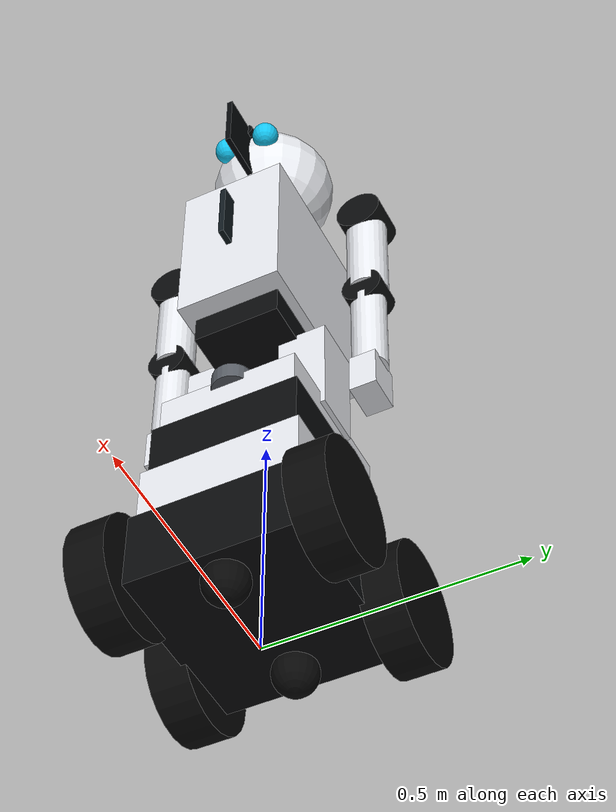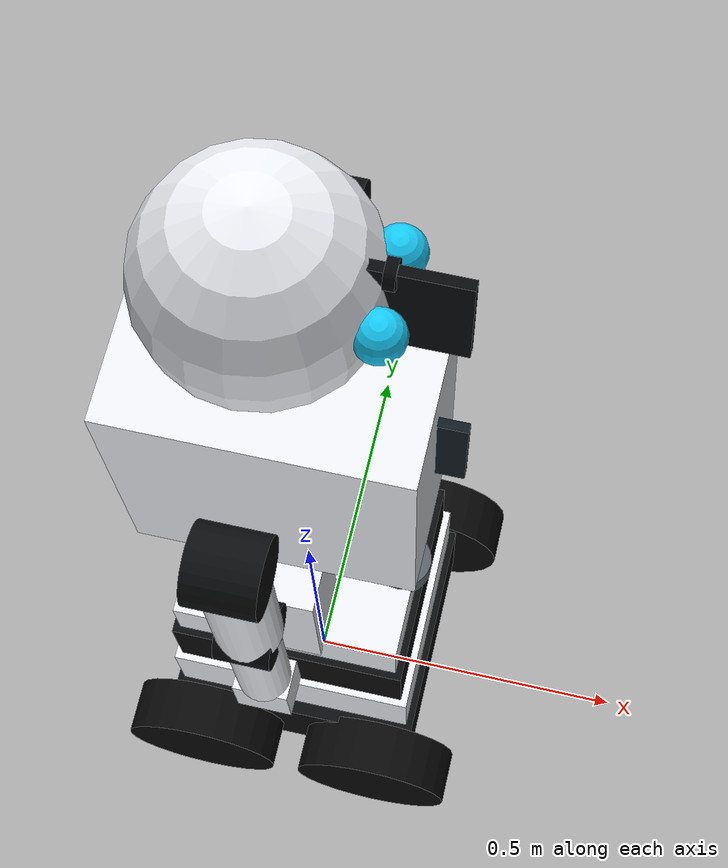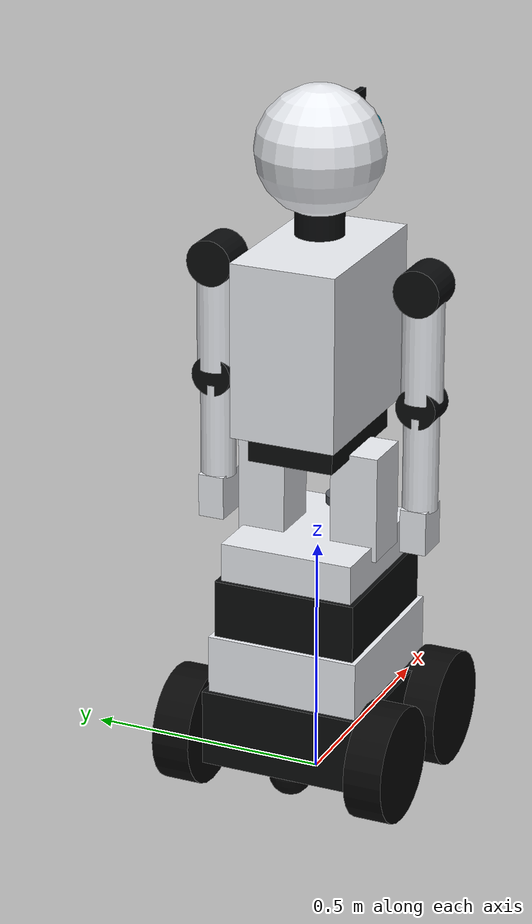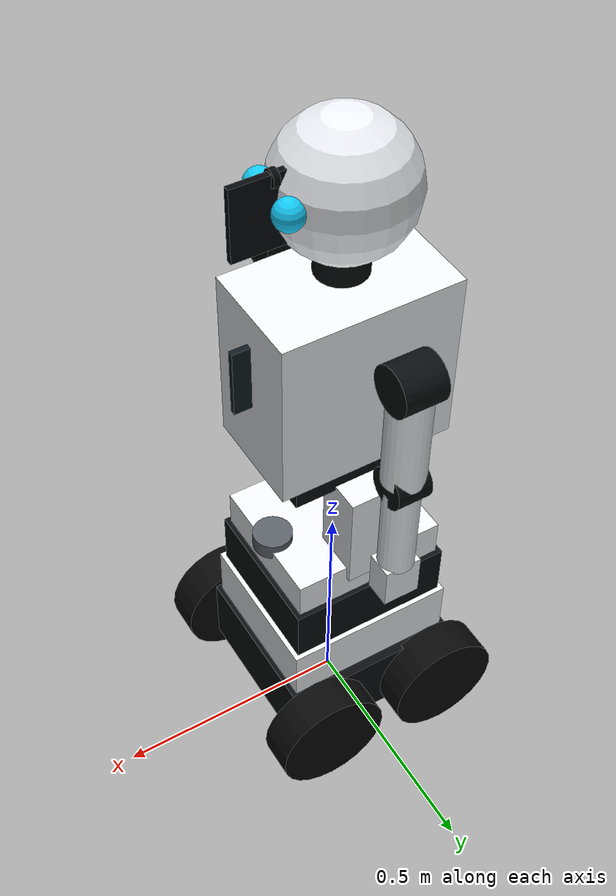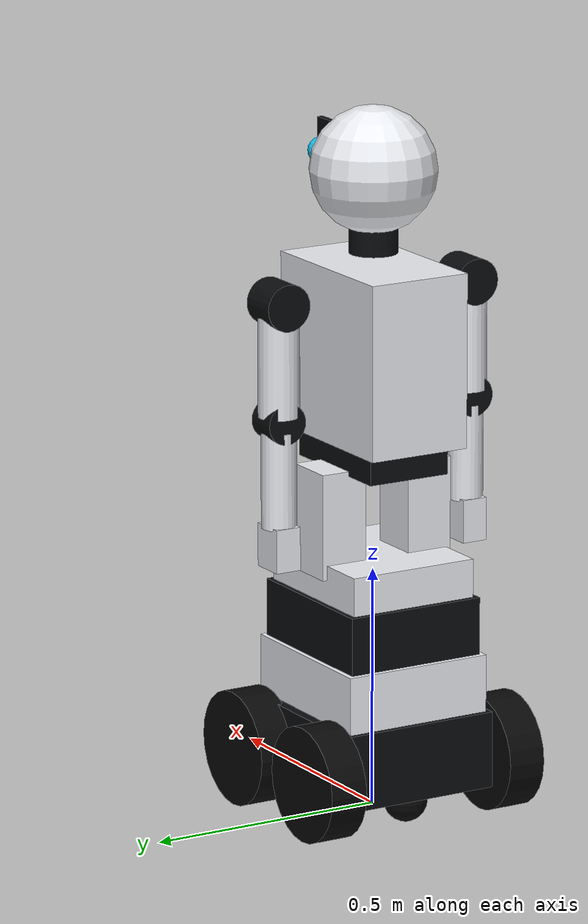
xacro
<?xml version="1.0"?>
<robot xmlns:xacro="http://www.ros.org/wiki/xacro" name="gracemo">

  <!-- GRACEEMO-01 product design: white shells, black joints, cyan LEDs,
       chest status display, ~1.37 m, differential two-wheel base.
       Joint names used by the twin/brain are preserved. -->

  <xacro:property name="chassis_length" value="0.38"/>
  <xacro:property name="chassis_width"  value="0.36"/>
  <xacro:property name="chassis_height" value="0.38"/>
  <xacro:property name="chassis_mass"   value="12.0"/>

  <xacro:property name="wheel_radius"     value="0.12"/>
  <xacro:property name="wheel_width"      value="0.08"/>
  <xacro:property name="wheel_mass"       value="1.2"/>
  <xacro:property name="wheel_separation" value="0.42"/>

  <xacro:property name="caster_radius" value="0.045"/>
  <xacro:property name="caster_mass"   value="0.25"/>

  <xacro:macro name="box_inertia" params="m w h d">
    <inertial>
      <mass value="${m}"/>
      <inertia ixx="${(m/12.0)*(h*h+d*d)}" ixy="0" ixz="0"
               iyy="${(m/12.0)*(w*w+d*d)}" iyz="0"
               izz="${(m/12.0)*(w*w+h*h)}"/>
    </inertial>
  </xacro:macro>

  <xacro:macro name="cylinder_inertia" params="m r h">
    <inertial>
      <mass value="${m}"/>
      <inertia ixx="${(m/12.0)*(3*r*r+h*h)}" ixy="0" ixz="0"
               iyy="${(m/12.0)*(3*r*r+h*h)}" iyz="0"
               izz="${(m/2.0)*r*r}"/>
    </inertial>
  </xacro:macro>

  <xacro:macro name="sphere_inertia" params="m r">
    <inertial>
      <mass value="${m}"/>
      <inertia ixx="${(2.0/5.0)*m*r*r}" ixy="0" ixz="0"
               iyy="${(2.0/5.0)*m*r*r}" iyz="0"
               izz="${(2.0/5.0)*m*r*r}"/>
    </inertial>
  </xacro:macro>

  <material name="shell_white">
    <color rgba="0.92 0.93 0.95 1.0"/>
  </material>
  <material name="actuator_black">
    <color rgba="0.04 0.045 0.05 1.0"/>
  </material>
  <material name="tyre_black">
    <color rgba="0.03 0.03 0.03 1.0"/>
  </material>
  <material name="led_cyan">
    <color rgba="0.08 0.78 0.95 1.0"/>
  </material>
  <material name="face_black">
    <color rgba="0.02 0.03 0.04 1.0"/>
  </material>
  <material name="screen_dark">
    <color rgba="0.06 0.10 0.12 1.0"/>
  </material>
  <material name="metal_grey">
    <color rgba="0.35 0.37 0.40 1.0"/>
  </material>

  <link name="base_footprint"/>

  <joint name="base_footprint_joint" type="fixed">
    <parent link="base_footprint"/>
    <child link="base_link"/>
    <origin xyz="0 0 ${wheel_radius}" rpy="0 0 0"/>
  </joint>

  <!-- Stacked mobile base (visuals relative to base_link origin at wheel axis) -->
  <link name="base_link">
    <visual>
      <geometry>
        <box size="${chassis_length} ${chassis_width} 0.16"/>
      </geometry>
      <origin xyz="0 0 0.02" rpy="0 0 0"/>
      <material name="actuator_black"/>
    </visual>
    <visual>
      <geometry>
        <box size="0.36 0.32 0.12"/>
      </geometry>
      <origin xyz="0 0 0.16" rpy="0 0 0"/>
      <material name="shell_white"/>
    </visual>
    <visual>
      <geometry>
        <box size="0.34 0.30 0.12"/>
      </geometry>
      <origin xyz="0 0 0.28" rpy="0 0 0"/>
      <material name="actuator_black"/>
    </visual>
    <visual>
      <geometry>
        <box size="0.32 0.28 0.08"/>
      </geometry>
      <origin xyz="0 0 0.38" rpy="0 0 0"/>
      <material name="shell_white"/>
    </visual>
    <collision>
      <geometry>
        <box size="${chassis_length} ${chassis_width} ${chassis_height}"/>
      </geometry>
      <origin xyz="0 0 ${chassis_height/2 - 0.06}" rpy="0 0 0"/>
    </collision>
    <xacro:box_inertia m="${chassis_mass}" w="${chassis_width}" h="${chassis_height}" d="${chassis_length}"/>
  </link>

  <xacro:macro name="drive_wheel" params="prefix x_offset y_offset">
    <link name="${prefix}_wheel">
      <visual>
        <geometry>
          <cylinder radius="${wheel_radius}" length="${wheel_width}"/>
        </geometry>
        <material name="tyre_black"/>
      </visual>
      <collision>
        <geometry>
          <cylinder radius="${wheel_radius}" length="${wheel_width}"/>
        </geometry>
      </collision>
      <xacro:cylinder_inertia m="${wheel_mass}" r="${wheel_radius}" h="${wheel_width}"/>
    </link>

    <joint name="${prefix}_wheel_joint" type="continuous">
      <parent link="base_link"/>
      <child link="${prefix}_wheel"/>
      <origin xyz="${x_offset} ${y_offset} 0" rpy="${-pi/2} 0 0"/>
      <axis xyz="0 0 1"/>
      <dynamics damping="0.1" friction="0.1"/>
    </joint>
  </xacro:macro>

  <xacro:drive_wheel prefix="left"  x_offset="-0.14" y_offset="${wheel_separation/2}"/>
  <xacro:drive_wheel prefix="right" x_offset="-0.14" y_offset="${-wheel_separation/2}"/>
  <xacro:drive_wheel prefix="left_front"  x_offset="0.14" y_offset="${wheel_separation/2}"/>
  <xacro:drive_wheel prefix="right_front" x_offset="0.14" y_offset="${-wheel_separation/2}"/>

  <link name="caster_wheel">
    <visual>
      <geometry>
        <sphere radius="${caster_radius}"/>
      </geometry>
      <material name="tyre_black"/>
    </visual>
    <collision>
      <geometry>
        <sphere radius="${caster_radius}"/>
      </geometry>
    </collision>
    <xacro:sphere_inertia m="${caster_mass}" r="${caster_radius}"/>
  </link>

  <joint name="caster_wheel_joint" type="fixed">
    <parent link="base_link"/>
    <child link="caster_wheel"/>
    <origin xyz="${-chassis_length/2 + 0.06} 0 ${-(wheel_radius - caster_radius)}" rpy="0 0 0"/>
  </joint>

  <link name="front_caster_wheel">
    <visual>
      <geometry>
        <sphere radius="${caster_radius}"/>
      </geometry>
      <material name="tyre_black"/>
    </visual>
    <collision>
      <geometry>
        <sphere radius="${caster_radius}"/>
      </geometry>
    </collision>
    <xacro:sphere_inertia m="${caster_mass}" r="${caster_radius}"/>
  </link>
  <joint name="front_caster_joint" type="fixed">
    <parent link="base_link"/>
    <child link="front_caster_wheel"/>
    <origin xyz="${chassis_length/2 - 0.06} 0 ${-(wheel_radius - caster_radius)}" rpy="0 0 0"/>
  </joint>

  <!-- Hip columns -->
  <link name="hip_left_link">
    <visual>
      <geometry>
        <box size="0.11 0.10 0.22"/>
      </geometry>
      <material name="shell_white"/>
    </visual>
    <xacro:box_inertia m="0.6" w="0.10" h="0.22" d="0.11"/>
  </link>
  <joint name="hip_left_joint" type="fixed">
    <parent link="base_link"/>
    <child link="hip_left_link"/>
    <origin xyz="0 0.10 0.50" rpy="0 0 0"/>
  </joint>
  <link name="hip_right_link">
    <visual>
      <geometry>
        <box size="0.11 0.10 0.22"/>
      </geometry>
      <material name="shell_white"/>
    </visual>
    <xacro:box_inertia m="0.6" w="0.10" h="0.22" d="0.11"/>
  </link>
  <joint name="hip_right_joint" type="fixed">
    <parent link="base_link"/>
    <child link="hip_right_link"/>
    <origin xyz="0 -0.10 0.50" rpy="0 0 0"/>
  </joint>

  <!-- Torso + chest display -->
  <link name="torso_link">
    <visual>
      <geometry>
        <box size="0.28 0.18 0.08"/>
      </geometry>
      <origin xyz="0 0 -0.20" rpy="0 0 0"/>
      <material name="actuator_black"/>
    </visual>
    <visual>
      <geometry>
        <box size="0.36 0.22 0.36"/>
      </geometry>
      <material name="shell_white"/>
    </visual>
    <visual>
      <geometry>
        <box size="0.20 0.012 0.14"/>
      </geometry>
      <origin xyz="0.116 0 0.04" rpy="0 0 0"/>
      <material name="screen_dark"/>
    </visual>
    <collision>
      <geometry>
        <box size="0.36 0.22 0.40"/>
      </geometry>
    </collision>
    <xacro:box_inertia m="6.0" w="0.22" h="0.40" d="0.36"/>
  </link>
  <joint name="torso_joint" type="fixed">
    <parent link="base_link"/>
    <child link="torso_link"/>
    <origin xyz="0 0 0.84" rpy="0 0 0"/>
  </joint>

  <link name="lidar_link">
    <visual>
      <geometry>
        <cylinder radius="0.04" length="0.035"/>
      </geometry>
      <material name="metal_grey"/>
    </visual>
    <collision>
      <geometry>
        <cylinder radius="0.04" length="0.035"/>
      </geometry>
    </collision>
    <xacro:cylinder_inertia m="0.18" r="0.04" h="0.035"/>
  </link>
  <joint name="lidar_joint" type="fixed">
    <parent link="base_link"/>
    <child link="lidar_link"/>
    <origin xyz="0.14 0 0.42" rpy="0 0 0"/>
  </joint>

  <link name="neck_yaw_link">
    <visual>
      <geometry>
        <cylinder radius="0.05" length="0.09"/>
      </geometry>
      <origin xyz="0 0 0.045" rpy="0 0 0"/>
      <material name="actuator_black"/>
    </visual>
    <collision>
      <geometry>
        <cylinder radius="0.05" length="0.09"/>
      </geometry>
      <origin xyz="0 0 0.045" rpy="0 0 0"/>
    </collision>
    <xacro:cylinder_inertia m="0.25" r="0.05" h="0.09"/>
  </link>

  <joint name="neck_yaw" type="revolute">
    <parent link="torso_link"/>
    <child link="neck_yaw_link"/>
    <origin xyz="0 0 0.20" rpy="0 0 0"/>
    <axis xyz="0 0 1"/>
    <limit lower="-1.2" upper="1.2" effort="5.0" velocity="2.0"/>
  </joint>

  <link name="head_link">
    <visual>
      <geometry>
        <sphere radius="0.13"/>
      </geometry>
      <origin xyz="0 0 0.08" rpy="0 0 0"/>
      <material name="shell_white"/>
    </visual>
    <visual>
      <geometry>
        <box size="0.18 0.012 0.14"/>
      </geometry>
      <origin xyz="0.12 0 0.08" rpy="0 0 0"/>
      <material name="face_black"/>
    </visual>
    <visual>
      <geometry>
        <sphere radius="0.028"/>
      </geometry>
      <origin xyz="0.128 0.045 0.10" rpy="0 0 0"/>
      <material name="led_cyan"/>
    </visual>
    <visual>
      <geometry>
        <sphere radius="0.028"/>
      </geometry>
      <origin xyz="0.128 -0.045 0.10" rpy="0 0 0"/>
      <material name="led_cyan"/>
    </visual>
    <collision>
      <geometry>
        <sphere radius="0.14"/>
      </geometry>
      <origin xyz="0 0 0.08" rpy="0 0 0"/>
    </collision>
    <xacro:box_inertia m="1.4" w="0.26" h="0.24" d="0.22"/>
  </link>

  <joint name="neck_pitch" type="revolute">
    <parent link="neck_yaw_link"/>
    <child link="head_link"/>
    <origin xyz="0 0 0.09" rpy="0 0 0"/>
    <axis xyz="0 1 0"/>
    <limit lower="-0.5" upper="0.6" effort="5.0" velocity="2.0"/>
  </joint>

  <link name="camera_link">
    <visual>
      <geometry>
        <cylinder radius="0.016" length="0.012"/>
      </geometry>
      <origin xyz="0 0 0" rpy="${pi/2} 0 ${pi/2}"/>
      <material name="face_black"/>
    </visual>
    <xacro:box_inertia m="0.05" w="0.03" h="0.03" d="0.03"/>
  </link>

  <joint name="camera_joint" type="fixed">
    <parent link="head_link"/>
    <child link="camera_link"/>
    <origin xyz="0.13 0 0.14" rpy="0 0 0"/>
  </joint>

  <link name="camera_optical_frame"/>
  <joint name="camera_optical_joint" type="fixed">
    <parent link="camera_link"/>
    <child link="camera_optical_frame"/>
    <origin xyz="0 0 0" rpy="${-pi/2} 0 ${-pi/2}"/>
  </joint>

  <link name="imu_link">
    <visual>
      <geometry>
        <box size="0.02 0.02 0.01"/>
      </geometry>
      <material name="shell_white"/>
    </visual>
    <xacro:box_inertia m="0.01" w="0.02" h="0.01" d="0.02"/>
  </link>
  <joint name="imu_joint" type="fixed">
    <parent link="torso_link"/>
    <child link="imu_link"/>
    <origin xyz="0 0 0" rpy="0 0 0"/>
  </joint>

  <!-- Shoulder pitch joints keep brain topics left_hand / right_hand -->
  <xacro:macro name="arm" params="prefix y_sign">
    <link name="${prefix}_hand_link">
      <visual>
        <geometry>
          <cylinder radius="0.048" length="0.085"/>
        </geometry>
        <origin xyz="0 0 0" rpy="0 ${pi/2} 0"/>
        <material name="actuator_black"/>
      </visual>
      <visual>
        <geometry>
          <cylinder radius="0.042" length="0.22"/>
        </geometry>
        <origin xyz="0 0 -0.12" rpy="0 0 0"/>
        <material name="shell_white"/>
      </visual>
      <visual>
        <geometry>
          <cylinder radius="0.042" length="0.07"/>
        </geometry>
        <origin xyz="0 0 -0.24" rpy="0 ${pi/2} 0"/>
        <material name="actuator_black"/>
      </visual>
      <visual>
        <geometry>
          <cylinder radius="0.036" length="0.20"/>
        </geometry>
        <origin xyz="0 0 -0.36" rpy="0 0 0"/>
        <material name="shell_white"/>
      </visual>
      <visual>
        <geometry>
          <box size="0.075 0.055 0.09"/>
        </geometry>
        <origin xyz="0 0 -0.50" rpy="0 0 0"/>
        <material name="shell_white"/>
      </visual>
      <collision>
        <geometry>
          <box size="0.08 0.08 0.55"/>
        </geometry>
        <origin xyz="0 0 -0.26" rpy="0 0 0"/>
      </collision>
      <xacro:box_inertia m="1.8" w="0.08" h="0.55" d="0.08"/>
    </link>

    <joint name="${prefix}_hand" type="revolute">
      <parent link="torso_link"/>
      <child link="${prefix}_hand_link"/>
      <origin xyz="0 ${y_sign * 0.22} 0.12" rpy="0 0 0"/>
      <axis xyz="0 1 0"/>
      <limit lower="0.0" upper="1.5708" effort="4.0" velocity="2.5"/>
    </joint>
  </xacro:macro>

  <xacro:arm prefix="left" y_sign="1"/>
  <xacro:arm prefix="right" y_sign="-1"/>

  <gazebo>
    <plugin filename="gz-sim-diff-drive-system" name="gz::sim::systems::DiffDrive">
      <left_joint>left_wheel_joint</left_joint>
      <right_joint>right_wheel_joint</right_joint>
      <wheel_separation>${wheel_separation}</wheel_separation>
      <wheel_radius>${wheel_radius}</wheel_radius>
      <max_linear_acceleration>1.0</max_linear_acceleration>
      <topic>/cmd_vel</topic>
      <odom_topic>/odom</odom_topic>
      <frame_id>odom</frame_id>
      <child_frame_id>base_footprint</child_frame_id>
      <odom_publish_frequency>30</odom_publish_frequency>
    </plugin>
    <plugin filename="gz-sim-joint-state-publisher-system"
            name="gz::sim::systems::JointStatePublisher">
      <topic>joint_states</topic>
    </plugin>
  </gazebo>

  <xacro:macro name="gz_joint_pos" params="joint topic">
    <gazebo>
      <plugin filename="gz-sim-joint-position-controller-system"
              name="gz::sim::systems::JointPositionController">
        <joint_name>${joint}</joint_name>
        <topic>${topic}</topic>
        <p_gain>40</p_gain>
        <i_gain>0.01</i_gain>
        <d_gain>2.0</d_gain>
      </plugin>
    </gazebo>
  </xacro:macro>
  <xacro:gz_joint_pos joint="neck_yaw" topic="/neck_yaw/cmd_pos"/>
  <xacro:gz_joint_pos joint="neck_pitch" topic="/neck_pitch/cmd_pos"/>
  <xacro:gz_joint_pos joint="left_hand" topic="/left_hand/cmd_pos"/>
  <xacro:gz_joint_pos joint="right_hand" topic="/right_hand/cmd_pos"/>

  <gazebo reference="lidar_link">
    <sensor type="gpu_lidar" name="rplidar_a1">
      <pose>0 0 0 0 0 0</pose>
      <always_on>true</always_on>
      <update_rate>10</update_rate>
      <topic>/scan</topic>
      <gz_frame_id>lidar_link</gz_frame_id>
      <ray>
        <scan>
          <horizontal>
            <samples>360</samples>
            <resolution>1</resolution>
            <min_angle>-3.14159</min_angle>
            <max_angle>3.14159</max_angle>
          </horizontal>
        </scan>
        <range>
          <min>0.15</min>
          <max>12.0</max>
          <resolution>0.01</resolution>
        </range>
        <noise>
          <type>gaussian</type>
          <mean>0.0</mean>
          <stddev>0.01</stddev>
        </noise>
      </ray>
      <visualize>true</visualize>
    </sensor>
  </gazebo>

  <gazebo reference="camera_link">
    <sensor type="camera" name="rgb_camera">
      <always_on>true</always_on>
      <update_rate>15</update_rate>
      <topic>/camera/image_raw</topic>
      <camera>
        <horizontal_fov>1.3962634</horizontal_fov>
        <image>
          <width>640</width>
          <height>480</height>
          <format>R8G8B8</format>
        </image>
        <clip>
          <near>0.02</near>
          <far>300</far>
        </clip>
        <noise>
          <type>gaussian</type>
          <mean>0.0</mean>
          <stddev>0.007</stddev>
        </noise>
      </camera>
    </sensor>
  </gazebo>

  <gazebo reference="imu_link">
    <sensor type="imu" name="imu_sensor">
      <always_on>true</always_on>
      <update_rate>100</update_rate>
      <topic>/imu/data</topic>
      <imu>
        <angular_velocity>
          <x><noise type="gaussian"><mean>0</mean><stddev>0.0002</stddev></noise></x>
          <y><noise type="gaussian"><mean>0</mean><stddev>0.0002</stddev></noise></y>
          <z><noise type="gaussian"><mean>0</mean><stddev>0.0002</stddev></noise></z>
        </angular_velocity>
        <linear_acceleration>
          <x><noise type="gaussian"><mean>0</mean><stddev>0.017</stddev></noise></x>
          <y><noise type="gaussian"><mean>0</mean><stddev>0.017</stddev></noise></y>
          <z><noise type="gaussian"><mean>0</mean><stddev>0.017</stddev></noise></z>
        </linear_acceleration>
      </imu>
    </sensor>
  </gazebo>

  <gazebo reference="base_link"><material>Gazebo/DarkGrey</material></gazebo>
  <gazebo reference="left_wheel"><material>Gazebo/Black</material></gazebo>
  <gazebo reference="right_wheel"><material>Gazebo/Black</material></gazebo>
  <gazebo reference="left_front_wheel"><material>Gazebo/Black</material></gazebo>
  <gazebo reference="right_front_wheel"><material>Gazebo/Black</material></gazebo>
  <gazebo reference="caster_wheel"><material>Gazebo/Black</material></gazebo>
  <gazebo reference="front_caster_wheel"><material>Gazebo/Black</material></gazebo>
  <gazebo reference="lidar_link"><material>Gazebo/Grey</material></gazebo>
  <gazebo reference="camera_link"><material>Gazebo/Black</material></gazebo>
  <gazebo reference="torso_link"><material>Gazebo/White</material></gazebo>
  <gazebo reference="hip_left_link"><material>Gazebo/White</material></gazebo>
  <gazebo reference="hip_right_link"><material>Gazebo/White</material></gazebo>
  <gazebo reference="neck_yaw_link"><material>Gazebo/DarkGrey</material></gazebo>
  <gazebo reference="head_link"><material>Gazebo/White</material></gazebo>
  <gazebo reference="left_hand_link"><material>Gazebo/White</material></gazebo>
  <gazebo reference="right_hand_link"><material>Gazebo/White</material></gazebo>

</robot>
